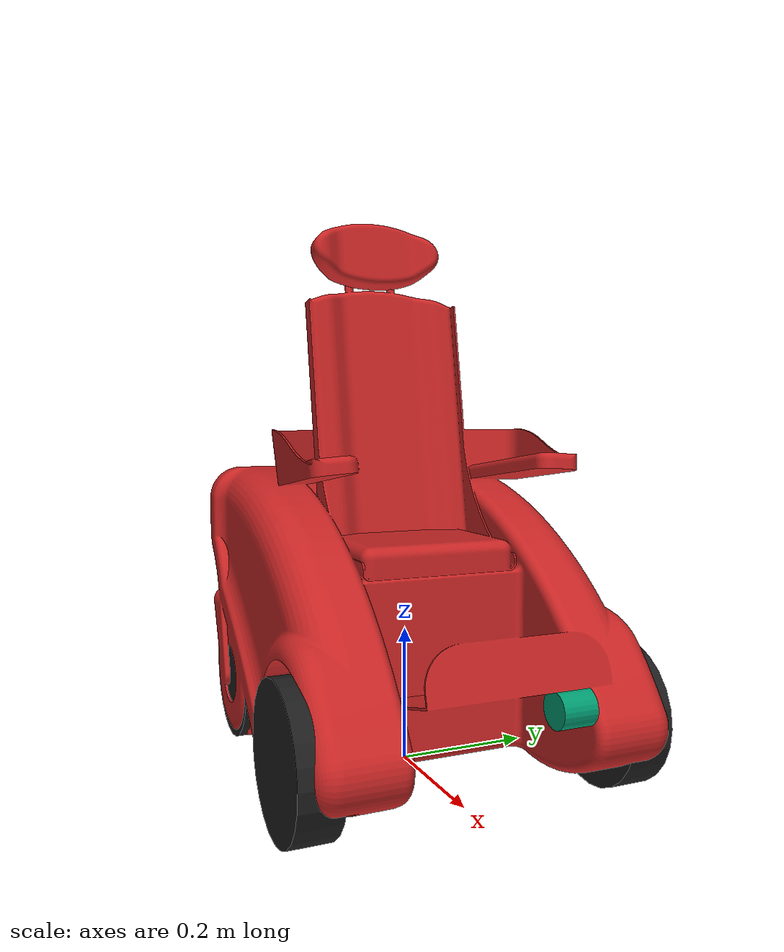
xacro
<?xml version="1.0" ?>
<robot name="wizzybug" xmlns:xacro="http://ros.org/wiki/xacro">
    <xacro:include filename="$(find wizzybug_description)/urdf/common_properties.xacro"/>
    <xacro:include filename="$(find wizzybug_description)/urdf/wizzybug.gazebo"/>

    <xacro:property name="base_length" value="0.4"/>
    <xacro:property name="base_width" value="0.4"/>
    <xacro:property name="base_height" value="0.3"/>
    <xacro:property name="base_mass" value="10.0"/>

    <xacro:property name="chair_thickness" value="0.1"/>
    <xacro:property name="chair_width" value="0.3"/>
    <xacro:property name="chair_height" value="0.5"/>
    <xacro:property name="chair_x" value="-0.3"/>
    <xacro:property name="chair_y" value="0.0"/>
    <xacro:property name="chair_z" value="0.2"/>
    <xacro:property name="chair_mass" value="5.0"/>

    <xacro:property name="wheel_radius" value="0.1025"/>
    <xacro:property name="wheel_thickness" value="0.06"/>
    <xacro:property name="wheel_friction" value="0.0"/>
    <xacro:property name="wheel_damping" value="0.1"/>
    <xacro:property name="caster_friction" value="0.0"/>
    <xacro:property name="caster_damping" value="0.0"/>
    <xacro:property name="wheel_mass" value="1.0"/>

    <xacro:property name="caster_wheel_base" value="0.32"/>
    <xacro:property name="caster_axis_x" value="0.45"/>
    <xacro:property name="caster_axis_z" value="0.16"/>
    <xacro:property name="caster_axis_offset_x" value="0.04"/>
    <xacro:property name="caster_axis_offset_z" value="0.16"/>

    <xacro:property name="imu_x" value="0.0"/>
    <xacro:property name="imu_y" value="0.0"/>
    <xacro:property name="imu_z" value="0.0"/>

    <xacro:property name="front_cam_x" value="0.1"/>
    <xacro:property name="front_cam_y" value="0.18"/>
    <xacro:property name="front_cam_z" value="0.16"/>

    <xacro:property name="right_cam_x" value="-0.2"/>
    <xacro:property name="right_cam_y" value="-0.26"/>
    <xacro:property name="right_cam_z" value="0.16"/>

    <xacro:property name="rear_cam_x" value="-0.48"/>
    <xacro:property name="rear_cam_y" value="0.0"/>
    <xacro:property name="rear_cam_z" value="0.63"/>

    <xacro:property name="rplidar_x" value="0.1"/>
    <xacro:property name="rplidar_y" value="0.1"/>
    <xacro:property name="rplidar_z" value="0.05"/>

    <link name="base_footprint">
    </link>
    <joint name="base_joint" type="fixed">
        <parent link="base_footprint"/>
        <child link="base_link"/>
        <origin xyz="${base_length/2} 0.0 ${wheel_radius}" rpy="0 0 0"/>
    </joint>
    <link name="base_link">
        <visual>
            <origin xyz="-0.1 -0.195 -0.05" rpy="0 0 0"/>
            <geometry>
                <mesh filename="package://wizzybug_description/meshes/Wizzibug_no_wheels.STL"
                      scale="0.001 0.001 0.001"/>
            </geometry>
            <material name="red"/>
        </visual>

        <collision>
            <origin xyz="${-base_length/2} 0.0 ${wheel_radius}" rpy="0 0 0"/>
            <geometry>
                <box size="${base_length} ${base_width} ${base_height}"/>
            </geometry>
        </collision>

        <inertial>
            <mass value="${base_mass}"/>

            <inertia ixx="${1/12*base_mass*(base_width*base_width + base_height*base_height)}" ixy="0.0" ixz="0.0"
                     iyy="${1/12*base_mass*(base_length*base_length + base_height*base_height)}" iyz="0.0"
                     izz="${1/12*base_mass*(base_width*base_width + base_length*base_length)}"/>
        </inertial>
    </link>

    <!-- ################################Left Wheel##############################################-->
    <link name="wheel_left_link">
        <visual>
            <geometry>
                <cylinder length="${wheel_thickness}" radius="${wheel_radius}"/>
            </geometry>
            <origin xyz="0 0 0" rpy="1.5708 0 0"/>
            <material name="black"/>
        </visual>
        <collision>
            <geometry>
                <cylinder length="${wheel_thickness}" radius="${wheel_radius}"/>
            </geometry>
            <origin xyz="0 0 0" rpy="1.5708 0 0"/>
        </collision>
        <inertial>
            <mass value="${wheel_mass}"/>
            <origin xyz="0 0 0" rpy="0 0 0"/>
            <inertia ixx="${1/4*wheel_mass*wheel_radius*wheel_radius + 1/12*wheel_mass*wheel_thickness}" ixy="0.0"
                     ixz="0.0"
                     iyy="${1/2*wheel_mass*wheel_radius*wheel_radius}" iyz="0.0"
                     izz="${1/4*wheel_mass*wheel_radius*wheel_radius + 1/12*wheel_mass*wheel_thickness}"/>
        </inertial>
    </link>
    <joint name="wheel_left_joint" type="continuous">
        <parent link="base_link"/>
        <child link="wheel_left_link"/>
        <origin xyz="0.0 ${base_width/2 + wheel_thickness/2} 0.0" rpy="0 0 0"/>
        <axis xyz="0 1 0"/>
        <dynamics damping="${wheel_damping}" friction="${wheel_friction}"/>
    </joint>

    <!-- ################################Right Wheel##############################################-->
    <link name="wheel_right_link">
        <visual>
            <geometry>
                <cylinder length="${wheel_thickness}" radius="${wheel_radius}"/>
            </geometry>
            <origin xyz="0 0 0" rpy="1.5708 0 0"/>
            <material name="black"/>
        </visual>
        <collision>
            <geometry>
                <cylinder length="${wheel_thickness}" radius="${wheel_radius}"/>
            </geometry>
            <origin rpy="1.5708 0 0" xyz="0 0 0"/>
        </collision>
        <inertial>
            <mass value="${wheel_mass}"/>
            <origin xyz="0 0 0" rpy="0 0 0"/>
            <inertia ixx="${1/4*wheel_mass*wheel_radius*wheel_radius + 1/12*wheel_mass*wheel_thickness}" ixy="0.0"
                     ixz="0.0"
                     iyy="${1/2*wheel_mass*wheel_radius*wheel_radius}" iyz="0.0"
                     izz="${1/4*wheel_mass*wheel_radius*wheel_radius + 1/12*wheel_mass*wheel_thickness}"/>
        </inertial>
    </link>
    <joint name="wheel_right_joint" type="continuous">
        <parent link="base_link"/>
        <child link="wheel_right_link"/>
        <origin xyz="0.0 ${-base_width/2 - wheel_thickness/2} 0.0" rpy="0 0 0"/>
        <axis xyz="0 1 0"/>
        <dynamics damping="${wheel_damping}" friction="${wheel_friction}"/>
    </joint>

    <!-- ################################Left caster Wheel##############################################-->

    <link name="left_caster_axle_link">
        <inertial>
            <mass value="0.01"/>
            <origin xyz="0 0 0" rpy="0 0 0"/>
            <inertia ixx="0.0" ixy="0.0"
                     ixz="0.0"
                     iyy="0.0" iyz="0.0"
                     izz="0.1"/>
        </inertial>
    </link>

    <joint name="left_caster_axle_joint" type="fixed">
        <parent link="base_link"/>
        <child link="left_caster_axle_link"/>
        <origin xyz="${-caster_axis_x}  ${caster_wheel_base/2+wheel_thickness/2} ${caster_axis_z}" rpy="0 0 0"/>
    </joint>

    <link name="left_caster_link">
        <visual>
            <geometry>
                <cylinder length="${wheel_thickness}" radius="${wheel_radius}"/>
            </geometry>
            <origin rpy="1.5708 0 0" xyz="0 0 0"/>
            <material name="black"/>
        </visual>
        <collision>
            <geometry>
                <cylinder length="${wheel_thickness}" radius="${wheel_radius}"/>
            </geometry>
            <origin rpy="1.5708 0 0" xyz="0 0 0"/>
        </collision>
        <inertial>
            <mass value="${wheel_mass}"/>
            <origin xyz="0 0 0" rpy="0 0 0"/>
            <inertia ixx="${1/4*wheel_mass*wheel_radius*wheel_radius + 1/12*wheel_mass*wheel_thickness}" ixy="0.0"
                     ixz="0.0"
                     iyy="${1/2*wheel_mass*wheel_radius*wheel_radius}" iyz="0.0"
                     izz="${1/4*wheel_mass*wheel_radius*wheel_radius + 1/12*wheel_mass*wheel_thickness}"/>
        </inertial>
    </link>

    <joint name="left_caster_joint" type="continuous">
        <parent link="left_caster_axle_link"/>
        <child link="left_caster_link"/>
        <origin xyz="${caster_axis_offset_x} 0.0 ${-caster_axis_offset_z}" rpy="0 0 0"/>
        <axis xyz="0 1 0"/>
        <dynamics damping="${wheel_damping}" friction="${wheel_friction}"/>
    </joint>

    <!-- ################################Right caster Wheel##############################################-->
    <link name="right_caster_axle_link">
        <inertial>
            <mass value="0.01"/>
            <origin xyz="0 0 0" rpy="0 0 0"/>
            <inertia ixx="0.0" ixy="0.0"
                     ixz="0.0"
                     iyy="0.0" iyz="0.0"
                     izz="0.1"/>
        </inertial>
    </link>

    <joint name="right_caster_axle_joint" type="fixed">
        <parent link="base_link"/>
        <child link="right_caster_axle_link"/>
        <origin xyz="${-caster_axis_x} ${-caster_wheel_base/2-wheel_thickness/2} ${caster_axis_z}" rpy="0 0 0"/>
    </joint>

    <link name="right_caster_link">
        <visual>
            <geometry>
                <cylinder length="${wheel_thickness}" radius="${wheel_radius}"/>
            </geometry>
            <origin rpy="1.5708 0 0" xyz="0 0 0"/>
            <material name="black"/>
        </visual>
        <collision>
            <geometry>
                <cylinder length="${wheel_thickness}" radius="${wheel_radius}"/>
            </geometry>
            <origin rpy="1.5708 0 0" xyz="0 0 0"/>
        </collision>
        <inertial>
            <mass value="${wheel_mass}"/>
            <origin xyz="0 0 0" rpy="0 0 0"/>
            <inertia ixx="${1/4*wheel_mass*wheel_radius*wheel_radius + 1/12*wheel_mass*wheel_thickness}" ixy="0.0"
                     ixz="0.0"
                     iyy="${1/2*wheel_mass*wheel_radius*wheel_radius}" iyz="0.0"
                     izz="${1/4*wheel_mass*wheel_radius*wheel_radius + 1/12*wheel_mass*wheel_thickness}"/>
        </inertial>
    </link>

    <joint name="right_caster_joint" type="continuous">
        <parent link="right_caster_axle_link"/>
        <child link="right_caster_link"/>
        <origin xyz="${caster_axis_offset_x} 0.0 ${-caster_axis_offset_z}" rpy="0 0 0"/>
        <axis xyz="0 1 0"/>
        <dynamics damping="${wheel_damping}" friction="${wheel_friction}"/>
    </joint>

    <!-- ################################imu##############################################-->

    <link name="imu_link"/>
    <joint name="imu_joint" type="fixed">
        <parent link="base_link"/>
        <child link="imu_link"/>
        <origin xyz="${imu_x} ${imu_y} ${imu_z}" rpy="0 0 0"/>
    </joint>

    <!-- ################################chair##############################################-->

    <joint name="chair_joint" type="fixed">
        <parent link="base_link"/>
        <child link="chair_link"/>
        <origin xyz="${chair_x} ${chair_y} ${chair_z}" rpy="0 0 0"/>
    </joint>
    <link name="chair_link">
        <collision>
            <geometry>
                <box size="${chair_thickness} ${chair_width} ${chair_height}"/>
            </geometry>
            <origin rpy="0 0 0" xyz="0 0 ${chair_height/2}"/>
        </collision>
        <inertial>
            <origin rpy="0 0 0" xyz="0 0 ${chair_height/2}"/>
            <mass value="${chair_mass}"/>

            <inertia ixx="${1/12*chair_mass*(chair_width*chair_width + chair_height*chair_height)}" ixy="0.0" ixz="0.0"
                     iyy="${1/12*chair_mass*(chair_thickness*chair_thickness + chair_height*chair_height)}" iyz="0.0"
                     izz="${1/12*chair_mass*(chair_width*chair_width + chair_thickness*chair_thickness)}"/>
        </inertial>
    </link>
    <!-- ################################ front cam ##############################################-->
    <joint name="front_cam_joint" type="fixed">
        <parent link="base_link"/>
        <child link="front_cam_link"/>
        <origin xyz="${front_cam_x} ${front_cam_y} ${front_cam_z}" rpy="0 0 0"/>
    </joint>
    <link name="front_cam_link"/>
    <joint name="front_cam_optical_joint" type="fixed">
        <parent link="front_cam_link"/>
        <child link="front_cam_link_optical"/>
        <origin xyz="0 0 0" rpy="${-pi/2} 0 ${-pi/2}"/>
    </joint>
    <link name="front_cam_link_optical"/>

        <!-- ################################ right cam ##############################################-->
    <joint name="right_cam_joint" type="fixed">
        <parent link="base_link"/>
        <child link="right_cam_link"/>
        <origin xyz="${right_cam_x} ${right_cam_y} ${right_cam_z}" rpy="0 0 -1.57"/>
    </joint>
    <link name="right_cam_link"/>
    <joint name="right_cam_optical_joint" type="fixed">
        <parent link="right_cam_link"/>
        <child link="right_cam_link_optical"/>
        <origin xyz="0 0 0" rpy="${-pi/2} 0 ${-pi/2}"/>
    </joint>
    <link name="right_cam_link_optical"/>

<!--  ################################ left cam ############################################## -->
    <joint name="left_cam_joint" type="fixed">
        <parent link="base_link"/>
        <child link="left_cam_link"/>
        <origin xyz="${right_cam_x} ${-right_cam_y} ${right_cam_z}" rpy="0 0 1.57"/>
    </joint>
    <link name="left_cam_link"/>
    <joint name="left_cam_optical_joint" type="fixed">
        <parent link="left_cam_link"/>
        <child link="left_cam_link_optical"/>
        <origin xyz="0 0 0" rpy="${-pi/2} 0 ${-pi/2}"/>
    </joint>
    <link name="left_cam_link_optical"/>

<!-- ################################ rear cam ##############################################-->
    <joint name="rear_cam_joint" type="fixed">
        <parent link="base_link"/>
        <child link="rear_cam_link"/>
        <origin xyz="${rear_cam_x} 0 ${rear_cam_z}" rpy="0 0 3.14"/>
    </joint>
    <link name="rear_cam_link"/>
    <joint name="rear_cam_optical_joint" type="fixed">
        <parent link="rear_cam_link"/>
        <child link="rear_cam_link_optical"/>
        <origin xyz="0 0 0" rpy="${-pi/2} 0 ${-pi/2}"/>
    </joint>
    <link name="rear_cam_link_optical"/>

    <!-- ################################ rplidar ##############################################-->
    <joint name="rplidar_joint" type="fixed">
        <parent link="base_link"/>
        <child link="rplidar_link"/>
        <origin xyz="${rplidar_x} ${rplidar_y} ${rplidar_z}" rpy="1.5708 1.45 0"/>
    </joint>
    <link name="rplidar_link">
        <collision>
            <origin xyz="0 0 0" rpy="0 0 0"/>
            <geometry>
            <cylinder length="0.05" radius="0.025"/>
            </geometry>
        </collision>
        <visual>
            <origin xyz="0 0 0" rpy="0 0 0"/>
            <geometry>
            <cylinder length="0.05" radius="0.025"/>
            </geometry>
        </visual>
        <inertial>
            <mass value="1e-5"/>
            <origin xyz="0 0 0" rpy="0 0 0"/>
            <inertia ixx="1e-6" ixy="0" ixz="0" iyy="1e-6" iyz="0" izz="1e-6"/>
        </inertial>
    </link>

    <joint name="laser_joint" type="fixed">
        <parent link="base_link"/>
        <child link="laser"/>
        <origin xyz="${rplidar_x} ${rplidar_y} ${rplidar_z}" rpy="1.5708 1.45 0"/>
    </joint>
    <link name="laser">
        <collision>
            <origin xyz="0 0 0" rpy="0 0 0"/>
            <geometry>
            <cylinder length="0.05" radius="0.025"/>
            </geometry>
        </collision>
        <visual>
            <origin xyz="0 0 0" rpy="0 0 0"/>
            <geometry>
            <cylinder length="0.05" radius="0.025"/>
            </geometry>
        </visual>
        <inertial>
            <mass value="1e-5"/>
            <origin xyz="0 0 0" rpy="0 0 0"/>
            <inertia ixx="1e-6" ixy="0" ixz="0" iyy="1e-6" iyz="0" izz="1e-6"/>
        </inertial>
    </link>

</robot>
